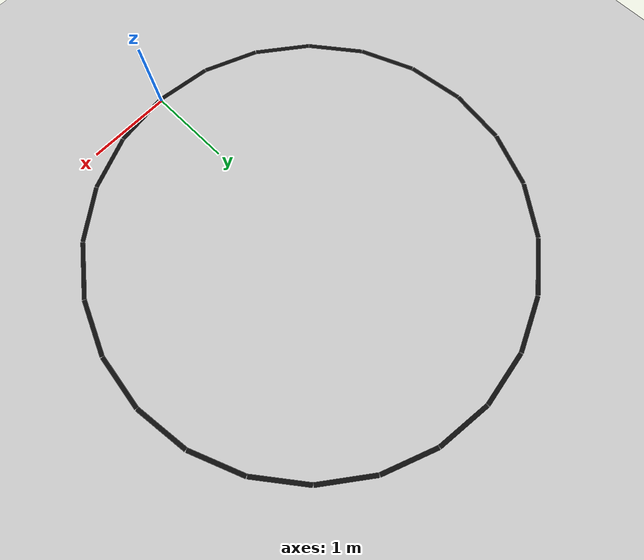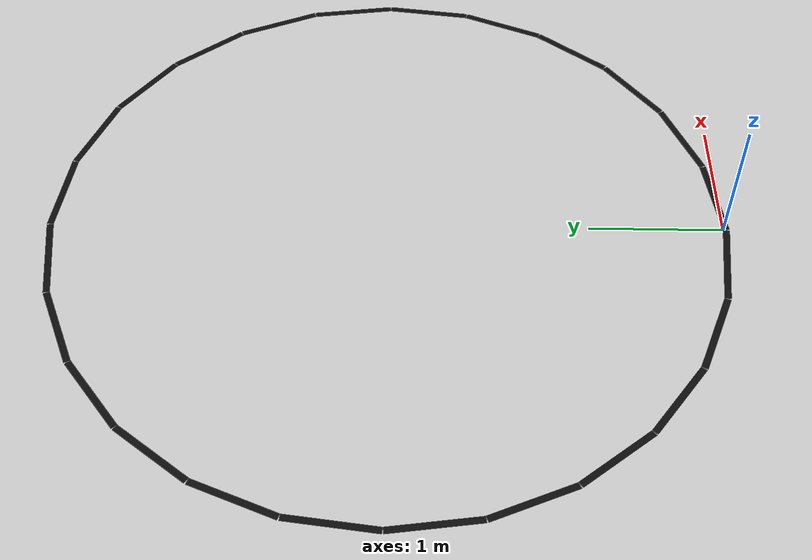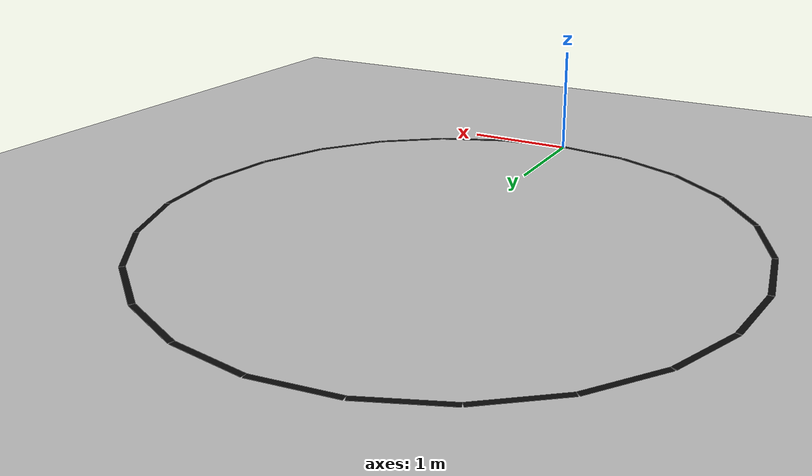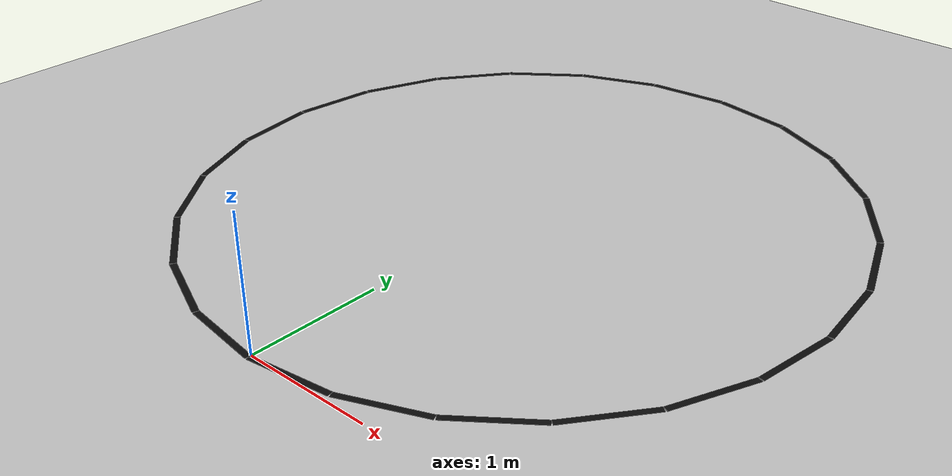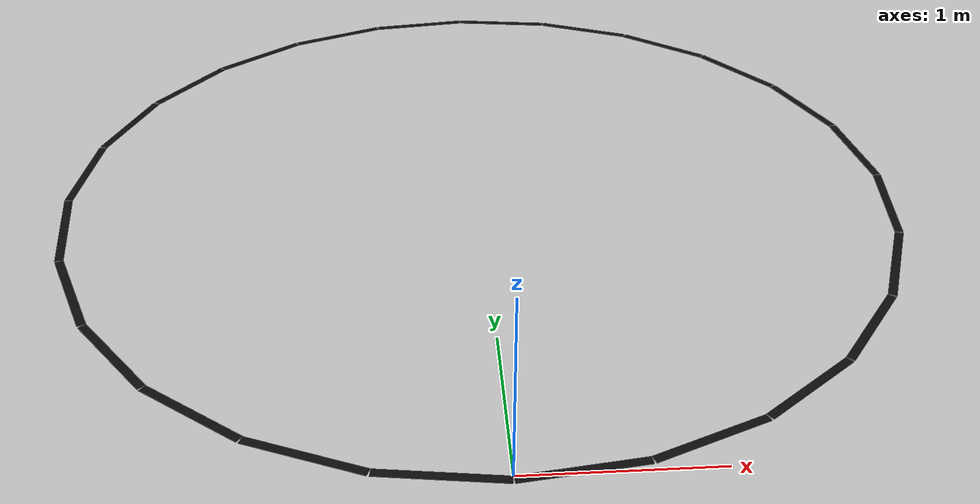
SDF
<?xml version="1.0"?>
<sdf version="1.6">
  <world name="curved">

    <include>
      <uri>model://ground_plane</uri>
    </include>

    <include>
      <uri>model://sun</uri>
    </include>

    <model name="curve_00"><static>true</static><pose>0.326 0.021 0.001 0 0 0.131</pose><link name="link"><visual name="v"><geometry><box><size>0.653 0.05 0.001</size></box></geometry><material><ambient>0.05 0.05 0.05 1</ambient><diffuse>0.05 0.05 0.05 1</diffuse></material></visual></link></model>
    <model name="curve_01"><static>true</static><pose>0.957 0.190 0.001 0 0 0.393</pose><link name="link"><visual name="v"><geometry><box><size>0.653 0.05 0.001</size></box></geometry><material><ambient>0.05 0.05 0.05 1</ambient><diffuse>0.05 0.05 0.05 1</diffuse></material></visual></link></model>
    <model name="curve_02"><static>true</static><pose>1.522 0.517 0.001 0 0 0.654</pose><link name="link"><visual name="v"><geometry><box><size>0.653 0.05 0.001</size></box></geometry><material><ambient>0.05 0.05 0.05 1</ambient><diffuse>0.05 0.05 0.05 1</diffuse></material></visual></link></model>
    <model name="curve_03"><static>true</static><pose>1.983 0.978 0.001 0 0 0.916</pose><link name="link"><visual name="v"><geometry><box><size>0.653 0.05 0.001</size></box></geometry><material><ambient>0.05 0.05 0.05 1</ambient><diffuse>0.05 0.05 0.05 1</diffuse></material></visual></link></model>
    <model name="curve_04"><static>true</static><pose>2.310 1.543 0.001 0 0 1.178</pose><link name="link"><visual name="v"><geometry><box><size>0.653 0.05 0.001</size></box></geometry><material><ambient>0.05 0.05 0.05 1</ambient><diffuse>0.05 0.05 0.05 1</diffuse></material></visual></link></model>
    <model name="curve_05"><static>true</static><pose>2.479 2.174 0.001 0 0 1.440</pose><link name="link"><visual name="v"><geometry><box><size>0.653 0.05 0.001</size></box></geometry><material><ambient>0.05 0.05 0.05 1</ambient><diffuse>0.05 0.05 0.05 1</diffuse></material></visual></link></model>
    <model name="curve_06"><static>true</static><pose>2.479 2.826 0.001 0 0 1.702</pose><link name="link"><visual name="v"><geometry><box><size>0.653 0.05 0.001</size></box></geometry><material><ambient>0.05 0.05 0.05 1</ambient><diffuse>0.05 0.05 0.05 1</diffuse></material></visual></link></model>
    <model name="curve_07"><static>true</static><pose>2.310 3.457 0.001 0 0 1.963</pose><link name="link"><visual name="v"><geometry><box><size>0.653 0.05 0.001</size></box></geometry><material><ambient>0.05 0.05 0.05 1</ambient><diffuse>0.05 0.05 0.05 1</diffuse></material></visual></link></model>
    <model name="curve_08"><static>true</static><pose>1.983 4.022 0.001 0 0 2.225</pose><link name="link"><visual name="v"><geometry><box><size>0.653 0.05 0.001</size></box></geometry><material><ambient>0.05 0.05 0.05 1</ambient><diffuse>0.05 0.05 0.05 1</diffuse></material></visual></link></model>
    <model name="curve_09"><static>true</static><pose>1.522 4.483 0.001 0 0 2.487</pose><link name="link"><visual name="v"><geometry><box><size>0.653 0.05 0.001</size></box></geometry><material><ambient>0.05 0.05 0.05 1</ambient><diffuse>0.05 0.05 0.05 1</diffuse></material></visual></link></model>
    <model name="curve_10"><static>true</static><pose>0.957 4.810 0.001 0 0 2.749</pose><link name="link"><visual name="v"><geometry><box><size>0.653 0.05 0.001</size></box></geometry><material><ambient>0.05 0.05 0.05 1</ambient><diffuse>0.05 0.05 0.05 1</diffuse></material></visual></link></model>
    <model name="curve_11"><static>true</static><pose>0.326 4.979 0.001 0 0 3.011</pose><link name="link"><visual name="v"><geometry><box><size>0.653 0.05 0.001</size></box></geometry><material><ambient>0.05 0.05 0.05 1</ambient><diffuse>0.05 0.05 0.05 1</diffuse></material></visual></link></model>
    <model name="curve_12"><static>true</static><pose>-0.326 4.979 0.001 0 0 3.272</pose><link name="link"><visual name="v"><geometry><box><size>0.653 0.05 0.001</size></box></geometry><material><ambient>0.05 0.05 0.05 1</ambient><diffuse>0.05 0.05 0.05 1</diffuse></material></visual></link></model>
    <model name="curve_13"><static>true</static><pose>-0.957 4.810 0.001 0 0 3.534</pose><link name="link"><visual name="v"><geometry><box><size>0.653 0.05 0.001</size></box></geometry><material><ambient>0.05 0.05 0.05 1</ambient><diffuse>0.05 0.05 0.05 1</diffuse></material></visual></link></model>
    <model name="curve_14"><static>true</static><pose>-1.522 4.483 0.001 0 0 3.796</pose><link name="link"><visual name="v"><geometry><box><size>0.653 0.05 0.001</size></box></geometry><material><ambient>0.05 0.05 0.05 1</ambient><diffuse>0.05 0.05 0.05 1</diffuse></material></visual></link></model>
    <model name="curve_15"><static>true</static><pose>-1.983 4.022 0.001 0 0 4.058</pose><link name="link"><visual name="v"><geometry><box><size>0.653 0.05 0.001</size></box></geometry><material><ambient>0.05 0.05 0.05 1</ambient><diffuse>0.05 0.05 0.05 1</diffuse></material></visual></link></model>
    <model name="curve_16"><static>true</static><pose>-2.310 3.457 0.001 0 0 4.320</pose><link name="link"><visual name="v"><geometry><box><size>0.653 0.05 0.001</size></box></geometry><material><ambient>0.05 0.05 0.05 1</ambient><diffuse>0.05 0.05 0.05 1</diffuse></material></visual></link></model>
    <model name="curve_17"><static>true</static><pose>-2.479 2.826 0.001 0 0 4.581</pose><link name="link"><visual name="v"><geometry><box><size>0.653 0.05 0.001</size></box></geometry><material><ambient>0.05 0.05 0.05 1</ambient><diffuse>0.05 0.05 0.05 1</diffuse></material></visual></link></model>
    <model name="curve_18"><static>true</static><pose>-2.479 2.174 0.001 0 0 4.843</pose><link name="link"><visual name="v"><geometry><box><size>0.653 0.05 0.001</size></box></geometry><material><ambient>0.05 0.05 0.05 1</ambient><diffuse>0.05 0.05 0.05 1</diffuse></material></visual></link></model>
    <model name="curve_19"><static>true</static><pose>-2.310 1.543 0.001 0 0 5.105</pose><link name="link"><visual name="v"><geometry><box><size>0.653 0.05 0.001</size></box></geometry><material><ambient>0.05 0.05 0.05 1</ambient><diffuse>0.05 0.05 0.05 1</diffuse></material></visual></link></model>
    <model name="curve_20"><static>true</static><pose>-1.983 0.978 0.001 0 0 5.367</pose><link name="link"><visual name="v"><geometry><box><size>0.653 0.05 0.001</size></box></geometry><material><ambient>0.05 0.05 0.05 1</ambient><diffuse>0.05 0.05 0.05 1</diffuse></material></visual></link></model>
    <model name="curve_21"><static>true</static><pose>-1.522 0.517 0.001 0 0 5.629</pose><link name="link"><visual name="v"><geometry><box><size>0.653 0.05 0.001</size></box></geometry><material><ambient>0.05 0.05 0.05 1</ambient><diffuse>0.05 0.05 0.05 1</diffuse></material></visual></link></model>
    <model name="curve_22"><static>true</static><pose>-0.957 0.190 0.001 0 0 5.890</pose><link name="link"><visual name="v"><geometry><box><size>0.653 0.05 0.001</size></box></geometry><material><ambient>0.05 0.05 0.05 1</ambient><diffuse>0.05 0.05 0.05 1</diffuse></material></visual></link></model>
    <model name="curve_23"><static>true</static><pose>-0.326 0.021 0.001 0 0 6.152</pose><link name="link"><visual name="v"><geometry><box><size>0.653 0.05 0.001</size></box></geometry><material><ambient>0.05 0.05 0.05 1</ambient><diffuse>0.05 0.05 0.05 1</diffuse></material></visual></link></model>

  </world>
</sdf>
